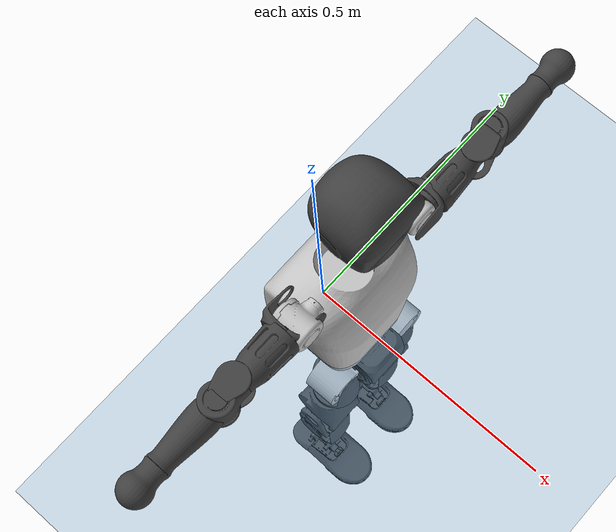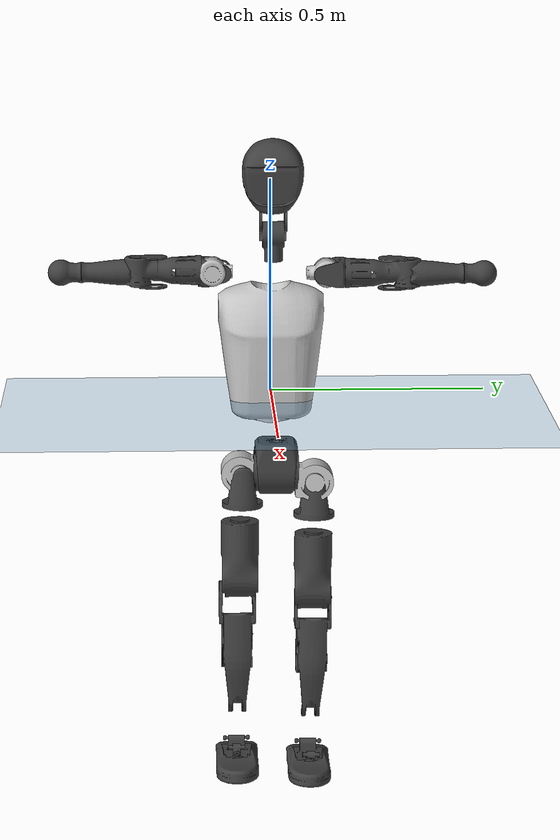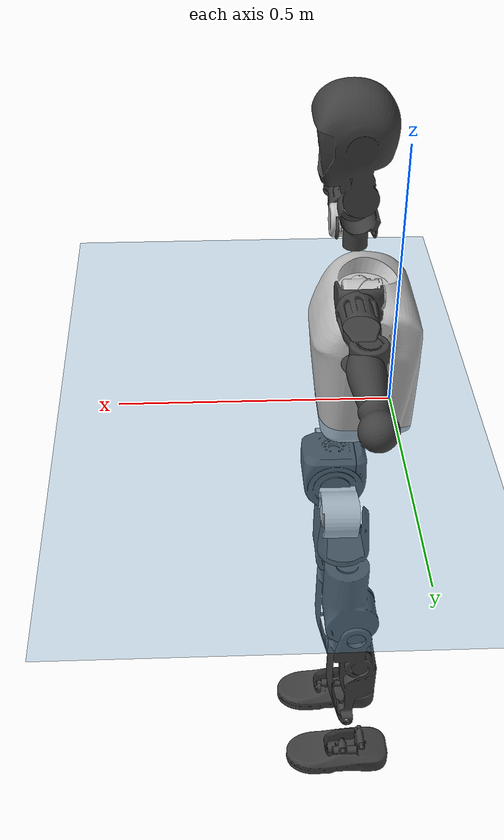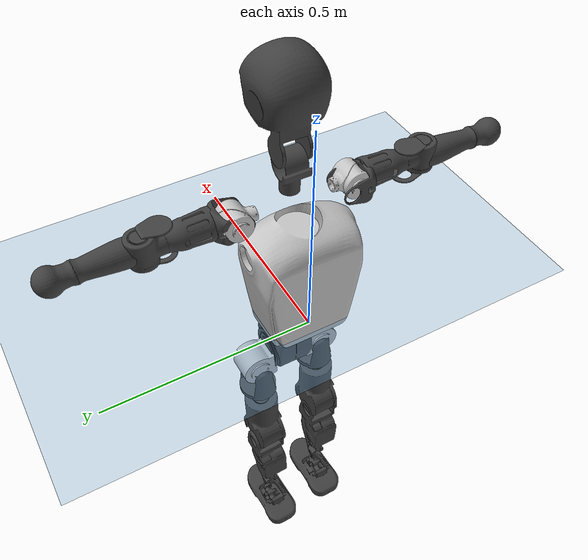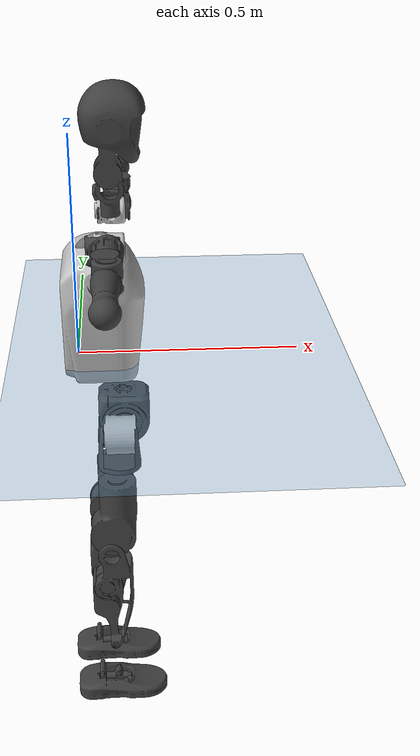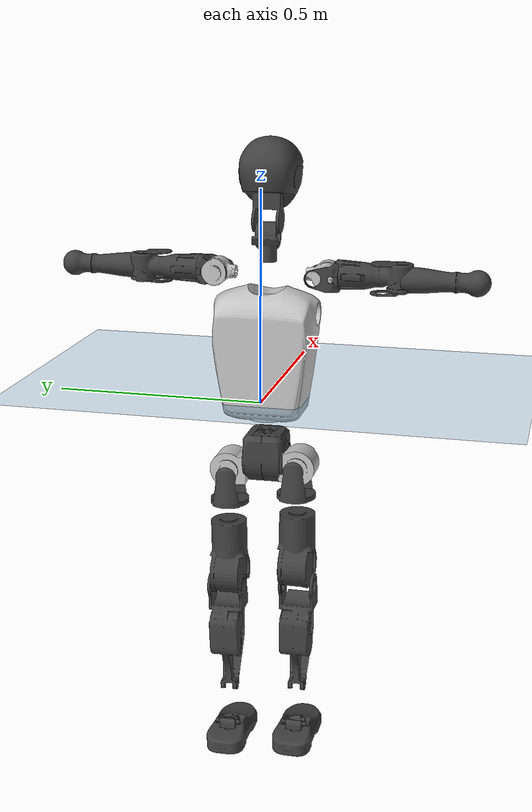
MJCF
<mujoco model="T1">
  <compiler angle="radian" assetdir="assets" balanceinertia="true" inertiafromgeom="false"/>

  <option timestep="0.005" density="1.2" viscosity="2e-05"/>

  <size nkey="1"/>

  <visual>
    <quality shadowsize="8192"/>
    <map shadowclip="0.5"/>
  </visual>

  <default>
    <default class="/">
      <joint armature="0.01" damping="0.01" frictionloss="0.1"/>
      <geom contype="0" conaffinity="0" group="1" solref="-1000 -80"/>
      <site size="0.01 0.005 0.005" group="5"/>
      <general forcelimited="true" biastype="affine" gainprm="25" biasprm="0 -25 -0.6"/>
      <default class="t1">
        <geom rgba="0.25 0.25 0.25 1"/>
        <default class="visual">
          <geom type="mesh" group="2"/>
        </default>
        <default class="collision">
          <geom group="3"/>
        </default>
        <default class="foot">
          <geom size="0.1115 0.05 0.015" type="box" condim="6" group="4" priority="1" solimp="0.015 1 0.015"/>
        </default>
        <default class="reward_collision_sphere">
          <geom group="5" rgba="1 0 0 1"/>
        </default>
      </default>
    </default>
  </default>

  <asset>
    <texture type="skybox" colorspace="auto" name="//unnamed_texture_0" builtin="gradient" rgb1="0.95 0.95 0.95" rgb2="0.95 0.95 0.95" width="100" height="600"/>
    <texture type="2d" colorspace="auto" name="texplane" builtin="checker" rgb1="0.345 0.575 0.748" rgb2="0.345 0.575 0.748" markrgb="1 1 1" width="512" height="512"/>
    <material name="MatPlane" class="/" texture="texplane" texuniform="true" texrepeat="2 2" specular="0.9"/>
    <mesh name="Trunk" class="/" file="Trunk.stl"/>
    <mesh name="H1" class="/" file="H1.stl"/>
    <mesh name="H2" class="/" file="H2.stl"/>
    <mesh name="AL1" class="/" file="AL1.stl"/>
    <mesh name="AL2" class="/" file="AL2.stl"/>
    <mesh name="AL3" class="/" file="AL3.stl"/>
    <mesh name="left_hand_link" class="/" file="left_hand_link.stl"/>
    <mesh name="AR1" class="/" file="AR1.stl"/>
    <mesh name="AR2" class="/" file="AR2.stl"/>
    <mesh name="AR3" class="/" file="AR3.stl"/>
    <mesh name="right_hand_link" class="/" file="right_hand_link.stl"/>
    <mesh name="Waist" class="/" file="Waist.stl"/>
    <mesh name="Hip_Pitch_Left" class="/" file="Hip_Pitch_Left.stl"/>
    <mesh name="Hip_Roll_Left" class="/" file="Hip_Roll_Left.stl"/>
    <mesh name="Hip_Yaw_Left" class="/" file="Hip_Yaw_Left.stl"/>
    <mesh name="Shank_Left" class="/" file="Shank_Left.stl"/>
    <mesh name="Ankle_Cross_Left" class="/" file="Ankle_Cross_Left.stl"/>
    <mesh name="left_foot_link" class="/" file="left_foot_link.stl"/>
    <mesh name="Hip_Pitch_Right" class="/" file="Hip_Pitch_Right.stl"/>
    <mesh name="Hip_Roll_Right" class="/" file="Hip_Roll_Right.stl"/>
    <mesh name="Hip_Yaw_Right" class="/" file="Hip_Yaw_Right.stl"/>
    <mesh name="Shank_Right" class="/" file="Shank_Right.stl"/>
    <mesh name="Ankle_Cross_Right" class="/" file="Ankle_Cross_Right.stl"/>
    <mesh name="right_foot_link" class="/" file="right_foot_link.stl"/>
  </asset>

  <worldbody>
    <geom name="floor" class="/" size="100 100 0.125" type="plane" group="0" material="MatPlane"/>
    <light name="toplight_shadow" class="/" pos="0 0 5" dir="0.0990148 0.0990148 -0.990148" type="directional" ambient="0.04 0.04 0.04" diffuse="0.55 0.55 0.55" specular="0.12 0.12 0.12"/>
    <light name="toplight_fill" class="/" pos="0 0 5" dir="0.0990148 0.0990148 -0.990148" type="directional" castshadow="false" ambient="0.04 0.04 0.04" diffuse="0.3 0.3 0.3" specular="0.08 0.08 0.08"/>
    <body name="trunk" childclass="t1" pos="-0.000183316 -0.00156439 -0.00881701" quat="1 0.000346274 -0.000233265 0.000473624">
      <inertial pos="0.0737466 0.00693369 0.141837" quat="0.999158 -0.0101398 -0.0324395 -0.0229861" mass="18.5848" diaginertia="0.416137 0.0205479 0.266705"/>
      <joint name="//unnamed_joint_0" type="free" armature="0" damping="0" frictionloss="0"/>
      <geom name="//unnamed_geom_1" class="visual" rgba="0.76 0.76 0.76 1" mesh="Trunk"/>
      <geom name="//unnamed_geom_2" class="collision" size="0.0864948 0.115326 0.17299" pos="0.0817601 0 0.161669" type="box"/>
      <geom name="//unnamed_geom_3" class="reward_collision_sphere" size="0.132625" pos="0.0817601 0 0.134724"/>
      <geom name="//unnamed_geom_4" class="reward_collision_sphere" size="0.017299" pos="0.0817601 0.0637396 0"/>
      <geom name="//unnamed_geom_5" class="reward_collision_sphere" size="0.017299" pos="0.0817601 -0.0637396 0"/>
      <geom name="//unnamed_geom_6" class="reward_collision_sphere" size="0.017299" pos="0.0817601 0.080237 0.242504"/>
      <geom name="//unnamed_geom_7" class="reward_collision_sphere" size="0.017299" pos="0.0817601 -0.080237 0.242504"/>
      <site name="imu" pos="-0.00195081 -0.0521954 0.022688" size="0.0115326"/>
      <camera name="track" pos="0 -1.49976 0" quat="0.707107 0.707107 0 0" mode="trackcom"/>
      <camera name="ego_camera" pos="0.166246 0 0.565843" quat="-0.5 -0.5 0.5 0.5"/>
      <body name="H1" pos="0.0832661 0.00603713 0.330617" quat="0.999987 0.0014903 0.00446609 -0.00187734">
        <inertial pos="-0.003486 -0.000875927 0.0726903" quat="0.757147 -0.0187699 -0.0113138 0.652877" mass="0.801818" diaginertia="0.00126481 5.12093e-05 0.000715715"/>
        <joint name="AAHead_yaw" pos="0 0 0" axis="0.00773144 -0.0163241 0.999837" range="-1.66181 1.3255" armature="0.0111073" damping="0.0486553" frictionloss="0.156913"/>
        <geom name="//unnamed_geom_8" class="visual" mesh="H1"/>
        <body name="H2" pos="-0.00288108 0.000241029 0.0970315" quat="0.999978 0.00293857 -0.00308393 -0.00513339">
          <inertial pos="0.0152521 -0.00694101 0.124133" quat="0.987788 0.0987371 -0.104535 -0.0599879" mass="0.953437" diaginertia="0.0093393 0.000428329 0.00792259"/>
          <joint name="Head_pitch" pos="0 0 0" axis="-0.0429194 -0.999072 -0.00351403" stiffness="0.0353081" range="-1.26343 0.379663" armature="0.0122412" damping="0" frictionloss="0.121959"/>
          <geom name="//unnamed_geom_9" class="visual" mesh="H2"/>
          <geom name="//unnamed_geom_10" class="collision" size="0.0922611" pos="0.0136267 0 0.148197"/>
          <geom name="//unnamed_geom_11" class="reward_collision_sphere" size="0.103794" pos="0.0272534 0 0.134724"/>
        </body>
      </body>
      <body name="AL1" pos="0.0841421 0.0825135 0.302645" quat="1 -0.000178013 0.000141675 -0.000334938">
        <inertial pos="-0.00431639 0.0402246 -0.00121361" quat="0.470129 0.517216 -0.483342 0.527112" mass="0.90296" diaginertia="0.00758443 0.000336747 0.00142419"/>
        <joint name="Left_Shoulder_Pitch" pos="0 0 0" axis="-0.00818232 0.999513 -0.0301133" stiffness="0.0306029" range="-3.54185 1.25027" armature="0.016467" damping="0.0399379" frictionloss="0.145143"/>
        <geom name="//unnamed_geom_12" class="visual" rgba="0.76 0.76 0.76 1" mesh="AL1"/>
        <body name="AL2" pos="0.00558352 0.0361424 0.000827634" quat="0.999985 0.00224799 0.00111204 0.00491645">
          <inertial pos="-0.0073848 0.0222876 -0.000786536" quat="0.475691 0.525855 -0.468649 0.526842" mass="0.275032" diaginertia="0.00210374 9.28012e-05 0.000874745"/>
          <joint name="Left_Shoulder_Roll" pos="0 0 0" axis="-0.999933 0.00661086 0.00949417" stiffness="0.0063754" range="-1.58314 1.77651" armature="0.00728549" damping="0" frictionloss="0.118497"/>
          <geom name="//unnamed_geom_13" class="visual" mesh="AL2"/>
          <body name="AL3" pos="0.00797306 0.0500588 0.000375726" quat="0.999986 -0.00482329 0.00050413 0.00205471">
            <inertial pos="-0.0116264 0.0624075 -0.00579009" quat="0.733263 0.677975 -0.051333 0.00626076" mass="1.30456" diaginertia="0.0525438 0.0021139 0.00232417"/>
            <joint name="Left_Elbow_Pitch" pos="0 0 0" axis="-0.00758391 -0.999909 -0.011173" range="-2.28446 2.0193" armature="0.00628453" damping="0.0101994" frictionloss="0.0431456"/>
            <geom name="//unnamed_geom_14" class="visual" mesh="AL3"/>
            <geom name="//unnamed_geom_15" class="collision" size="0.0345979 0.0864948" pos="0 0.0374939 0" quat="0.707105 0.707108 0 0" type="cylinder"/>
            <geom name="//unnamed_geom_16" class="reward_collision_sphere" size="0.0415175"/>
            <body name="left_hand_link" pos="0.00731987 0.105702 -0.000249376" quat="0.999981 -0.00236273 0.00437332 -0.00358082">
              <inertial pos="0.00170036 0.0738925 0.00109325" quat="0.704365 0.709761 0.0101378 -0.00258321" mass="0.547599" diaginertia="0.0331996 0.00173908 0.00109466"/>
              <joint name="Left_Elbow_Yaw" pos="0 0 0" axis="-0.0459378 0.0192234 0.998759" range="-2.32464 -0.24863" armature="0.0166087" damping="0.0580616" frictionloss="0.081122"/>
              <geom name="//unnamed_geom_17" class="visual" mesh="left_hand_link"/>
              <geom name="//unnamed_geom_18" class="collision" size="0.0345979 0.100911" pos="0 0.0974842 0" quat="0.707105 0.707108 0 0" type="cylinder"/>
              <geom name="//unnamed_geom_19" class="reward_collision_sphere" size="0.0576632"/>
              <geom name="//unnamed_geom_20" class="reward_collision_sphere" size="0.0403642" pos="0 0.0824866 0"/>
              <geom name="//unnamed_geom_21" class="reward_collision_sphere" size="0.0403642" pos="0 0.161224 0"/>
            </body>
          </body>
        </body>
      </body>
      <body name="AR1" pos="0.0795268 -0.0886039 0.306274" quat="1 4.53399e-05 0.000516017 0.000102985">
        <inertial pos="0.000505243 -0.023601 0.00142947" quat="0.513632 0.487868 -0.497539 0.500622" mass="0.745249" diaginertia="0.00630389 0.00032708 0.00127637"/>
        <joint name="Right_Shoulder_Pitch" pos="0 0 0" axis="0.00853442 -0.997931 0.0637305" stiffness="0.0266002" range="-1.2306 3.07984" armature="0.0124337" damping="0" frictionloss="0.183981"/>
        <geom name="//unnamed_geom_22" class="visual" rgba="0.76 0.76 0.76 1" mesh="AR1"/>
        <body name="AR2" pos="-0.0131704 -0.0238235 -0.00263242" quat="1 0.000122929 -9.23452e-05 -0.000126389">
          <inertial pos="-0.0033713 -0.0274795 0.000572155" quat="0.524209 0.482463 -0.500495 0.491873" mass="0.17986" diaginertia="0.00158504 7.53485e-05 0.000667204"/>
          <joint name="Right_Shoulder_Roll" pos="0 0 0" axis="-0.998801 0.0344529 0.0347836" stiffness="0.0463764" range="-1.70011 1.39965" armature="0.0122697" damping="0.0560326" frictionloss="0.0604033"/>
          <geom name="//unnamed_geom_23" class="visual" mesh="AR2"/>
          <body name="AR3" pos="0.010075 -0.0472783 0.00531038" quat="0.999995 0.000257527 -0.000387043 -0.00303968">
            <inertial pos="-0.00164953 -0.0730788 0.00219104" quat="0.722987 0.690751 -0.000419822 0.0123836" mass="1.14828" diaginertia="0.0501194 0.00247162 0.00223892"/>
            <joint name="Right_Elbow_Pitch" pos="0 0 0" axis="-4.65457e-05 1 -0.00035085" stiffness="0.0680962" range="-2.08906 2.47" armature="0.0114776" damping="0.0127276" frictionloss="0.107511"/>
            <geom name="//unnamed_geom_24" class="visual" mesh="AR3"/>
            <geom name="//unnamed_geom_25" class="collision" size="0.0345979 0.0864948" pos="0 -0.0374939 0" quat="0.707105 0.707108 0 0" type="cylinder"/>
            <geom name="//unnamed_geom_26" class="reward_collision_sphere" size="0.0415175"/>
            <body name="right_hand_link" pos="-0.00332421 -0.107927 -0.00417884" quat="1 8.52606e-05 0.000118266 -6.29512e-05">
              <inertial pos="0.00037872 -0.081114 0.0128452" quat="0.717194 0.696076 0.00223342 0.0332555" mass="0.633872" diaginertia="0.0415046 0.00213062 0.00105808"/>
              <joint name="Right_Elbow_Yaw" pos="0 0 0" axis="0.0393417 -0.00821259 0.999192" stiffness="0.00344926" range="-0.0858266 2.23485" armature="0.0123927" damping="0.0151758" frictionloss="0.115387"/>
              <geom name="//unnamed_geom_27" class="visual" mesh="right_hand_link"/>
              <geom name="//unnamed_geom_28" class="collision" size="0.0345979 0.100911" pos="0 -0.0974842 0" quat="0.707105 0.707108 0 0" type="cylinder"/>
              <geom name="//unnamed_geom_29" class="reward_collision_sphere" size="0.0576632"/>
              <geom name="//unnamed_geom_30" class="reward_collision_sphere" size="0.0403642" pos="0 -0.0824866 0"/>
              <geom name="//unnamed_geom_31" class="reward_collision_sphere" size="0.0403642" pos="0 -0.161224 0"/>
            </body>
          </body>
        </body>
      </body>
      <body name="Waist" pos="0.0990173 0.010011 -0.157675" quat="0.99999 -0.00444184 0.000215319 0.000742828">
        <inertial pos="0.00346863 0.00900228 0.00892758" quat="0.983517 -0.0016045 -0.180773 0.00366108" mass="4.11492" diaginertia="0.0296294 0.00145954 0.0258257"/>
        <joint name="Waist" pos="0 0 0" axis="0.0343734 0.00967165 0.999362" range="-1.59621 1.55588" armature="0.00947325" damping="0.0268752" frictionloss="0.18276"/>
        <geom name="//unnamed_geom_32" class="visual" mesh="Waist"/>
        <body name="Hip_Pitch_Left" pos="-0.00438121 0.0908689 -0.00916988" quat="0.999989 -0.0037163 -0.00256663 -0.00156738">
          <inertial pos="0.00222268 -0.00311378 -0.0259274" quat="0.976009 0.213544 0.0418064 0.00758149" mass="1.56748" diaginertia="0.00928649 0.00031211 0.00634657"/>
          <joint name="Left_Hip_Pitch" pos="0 0 0" axis="-0.0070787 0.999954 0.00650673" stiffness="0.0561112" range="-1.78664 1.50477" armature="0.0130878" damping="0.00653858" frictionloss="0.0903831"/>
          <geom name="//unnamed_geom_33" class="visual" rgba="0.76 0.76 0.76 1" mesh="Hip_Pitch_Left"/>
          <body name="Hip_Roll_Left" pos="-0.0106436 0.000494427 -0.033495" quat="0.999978 0.00213772 -0.00301092 0.00554808">
            <inertial pos="0.01284 0.00950669 -0.0752235" quat="0.67429 0.0350531 0.0149362 0.737483" mass="0.58248" diaginertia="0.00902041 0.000347888 0.00233561"/>
            <joint name="Left_Hip_Roll" pos="0 0 0" axis="-0.997819 0.0334954 0.0568756" range="-1.3978 -0.0222649" armature="0.00578584" damping="0" frictionloss="0.114587"/>
            <geom name="//unnamed_geom_34" class="visual" mesh="Hip_Roll_Left"/>
            <geom name="//unnamed_geom_35" class="reward_collision_sphere" size="0.0634295"/>
            <body name="Hip_Yaw_Left" pos="-0.0137282 0.000120305 -0.120257" quat="0.999983 -0.00474074 0.00293532 -0.00168328">
              <inertial pos="-0.0111109 0.000131626 -0.114339" quat="0.698631 -0.0344123 -0.0259793 0.714182" mass="3.40073" diaginertia="0.136855 0.0061571 0.0105319"/>
              <joint name="Left_Hip_Yaw" pos="0 0 0" axis="0.0275883 0.00621946 -0.9996" range="-1.05312 1.24277" armature="0.0111208" damping="0.0115226" frictionloss="0.0836535"/>
              <geom name="//unnamed_geom_36" class="visual" mesh="Hip_Yaw_Left"/>
              <geom name="//unnamed_geom_37" class="collision" size="0.0576632 0.0922611" type="cylinder"/>
              <body name="Shank_Left" pos="-0.0238089 0.00360086 -0.168147" quat="1 -6.17524e-05 0.000157218 -0.000514184">
                <inertial pos="-0.017779 0.0105076 -0.167783" quat="0.997686 0.00503359 -0.030387 0.0606054" mass="2.75334" diaginertia="0.16522 0.0087196 0.00784"/>
                <joint name="Left_Knee_Pitch" pos="0 0 0" axis="0.0321519 0.999441 -0.00915975" range="-0.128647 2.24272" armature="0.0124879" damping="0.00244701" frictionloss="0.113374"/>
                <geom name="//unnamed_geom_38" class="visual" mesh="Shank_Left"/>
                <geom name="//unnamed_geom_39" class="collision" size="0.0576632 0.0864948" pos="0 0 -0.161669" type="cylinder"/>
                <geom name="//unnamed_geom_40" class="reward_collision_sphere" size="0.0749621"/>
                <body name="Ankle_Cross_Left" pos="0.00148744 0.00405222 -0.389012" quat="0.999995 0.00210899 0.000788967 0.00213846">
                  <inertial pos="-0.013418 -0.00355995 -0.00470604" quat="0.44383 0.554161 0.551679 0.437688" mass="0.10126" diaginertia="0.000133106 6.7535e-06 5.29934e-05"/>
                  <joint name="Left_Ankle_Pitch" pos="0 0 0" axis="0.01833 0.99965 -0.0190515" range="-0.805094 0.278546" armature="0.0114845" damping="0" frictionloss="0.162739"/>
                  <geom name="//unnamed_geom_41" class="visual" mesh="Ankle_Cross_Left"/>
                  <body name="left_foot_link" pos="0.00213624 -0.00603346 -0.010238" quat="0.999999 -0.00107464 -0.000248412 0.00033904">
                    <inertial pos="-0.00426414 -0.00937257 -0.0134455" quat="-0.0148479 0.646461 -0.0012275 0.762801" mass="1.15451" diaginertia="0.0101506 0.000501681 0.00871175"/>
                    <joint name="Left_Ankle_Roll" pos="0 0 0" axis="-0.999399 0.033322 -0.00957869" range="-0.368395 0.20621" armature="0.00477109" damping="0.00831959" frictionloss="0.09291"/>
                    <geom name="//unnamed_geom_42" class="visual" mesh="left_foot_link"/>
                    <geom name="left_foot" class="foot" size="0.106198 0.067916 0.0190684" pos="0.0136267 0 -0.0202087"/>
                    <geom name="//unnamed_geom_44" class="reward_collision_sphere" size="0.0599697" pos="0.0136267 0 -0.0202087"/>
                    <geom name="//unnamed_geom_45" class="reward_collision_sphere" size="0.0345979" pos="0.129453 -0.0172472 -0.0202087"/>
                    <geom name="//unnamed_geom_46" class="reward_collision_sphere" size="0.0345979" pos="-0.0953868 -0.0172472 -0.0202087"/>
                    <site name="left_foot" class="foot" pos="0.0136267 0 -0.0202087" size="0.0115326"/>
                  </body>
                </body>
              </body>
            </body>
          </body>
        </body>
        <body name="Hip_Pitch_Right" pos="-0.00996895 -0.0837857 0.00877617" quat="1 -0.000142177 0.000335892 4.57216e-05">
          <inertial pos="0.0113073 0.00382896 -0.0236099" quat="0.971603 -0.236041 -0.0116431 0.0117136" mass="1.76921" diaginertia="0.00889627 0.000364493 0.00595302"/>
          <joint name="Right_Hip_Pitch" pos="0 0 0" axis="0.00223854 -0.999885 0.0150113" stiffness="0.0270424" range="-1.61017 1.92958" armature="0.00402956" damping="0.00494969" frictionloss="0.147808"/>
          <geom name="//unnamed_geom_47" class="visual" rgba="0.76 0.76 0.76 1" mesh="Hip_Pitch_Right"/>
          <body name="Hip_Roll_Right" pos="-0.0024221 0.00623922 -0.0262767" quat="1 -8.24918e-05 4.95086e-05 -4.823e-05">
            <inertial pos="0.00223424 0.0117536 -0.0637821" quat="0.687931 -0.0383478 0.029243 0.724172" mass="0.678409" diaginertia="0.00949627 0.000425864 0.00268323"/>
            <joint name="Right_Hip_Roll" pos="0 0 0" axis="-0.999997 0.00160028 0.00209466" stiffness="0.0142236" range="-0.199637 1.54504" armature="0.0107687" damping="0.00166617" frictionloss="0.167082"/>
            <geom name="//unnamed_geom_48" class="visual" mesh="Hip_Roll_Right"/>
            <geom name="//unnamed_geom_49" class="reward_collision_sphere" size="0.0634295"/>
            <body name="Hip_Yaw_Right" pos="-0.00972066 -0.00517647 -0.11492" quat="0.999991 0.00311041 -0.00269797 -0.000898634">
              <inertial pos="-0.00988676 0.0131093 -0.125406" quat="0.721543 -0.0446713 -0.0219951 0.690577" mass="3.57286" diaginertia="0.138929 0.00689742 0.0139273"/>
              <joint name="Right_Hip_Yaw" pos="0 0 0" axis="0.00817829 -0.0321124 -0.999451" range="-0.878035 0.807549" armature="0.0125571" damping="0" frictionloss="0.112746"/>
              <geom name="//unnamed_geom_50" class="visual" mesh="Hip_Yaw_Right"/>
              <geom name="//unnamed_geom_51" class="collision" size="0.0576632 0.0922611" type="cylinder"/>
              <body name="Shank_Right" pos="-0.0201119 -0.00633128 -0.183726" quat="1 0.000278456 -0.000109335 -0.000107789">
                <inertial pos="-0.00922917 -0.00159714 -0.160277" quat="0.99904 0.003941 -0.0314694 -0.030234" mass="3.0184" diaginertia="0.216535 0.0097356 0.00973123"/>
                <joint name="Right_Knee_Pitch" pos="0 0 0" axis="-0.021278 -0.999771 0.00232492" stiffness="0.0503959" range="-2.45729 -0.0960205" armature="0.0118901" damping="0" frictionloss="0.121835"/>
                <geom name="//unnamed_geom_52" class="visual" mesh="Shank_Right"/>
                <geom name="//unnamed_geom_53" class="collision" size="0.0576632 0.0864948" pos="0 0 -0.161669" type="cylinder"/>
                <geom name="//unnamed_geom_54" class="reward_collision_sphere" size="0.0749621"/>
                <body name="Ankle_Cross_Right" pos="0.00399343 -0.00179415 -0.381048" quat="0.999988 0.00387775 -0.00181189 -0.00216564">
                  <inertial pos="-0.00271626 0.0014076 0.000841948" quat="0.475768 0.51744 0.530155 0.474168" mass="0.124787" diaginertia="0.000179602 6.10739e-06 6.56609e-05"/>
                  <joint name="Right_Ankle_Pitch" pos="0 0 0" axis="-0.0476657 -0.998859 -0.00279041" stiffness="0.0478553" range="-0.51219 0.786339" armature="0.0123173" damping="0.0491309" frictionloss="0.169161"/>
                  <geom name="//unnamed_geom_55" class="visual" mesh="Ankle_Cross_Right"/>
                  <body name="right_foot_link" pos="0.00034219 0.000398942 -0.021232" quat="0.999998 0.000886099 0.000846544 0.00182672">
                    <inertial pos="0.0129886 0.00812804 -0.0109515" quat="-0.027551 0.597681 0.0086405 0.801214" mass="1.03694" diaginertia="0.0131283 0.000580211 0.0110212"/>
                    <joint name="Right_Ankle_Roll" pos="0 0 0" axis="-0.999987 0.00378411 -0.00331751" range="-0.402373 0.446129" armature="0.00818653" damping="0" frictionloss="0.121346"/>
                    <geom name="//unnamed_geom_56" class="visual" mesh="right_foot_link"/>
                    <geom name="right_foot" class="foot" size="0.0934169 0.0448468 0.0159428" pos="0.0136267 0 -0.0202087"/>
                    <geom name="//unnamed_geom_58" class="reward_collision_sphere" size="0.0461305"/>
                    <geom name="//unnamed_geom_59" class="reward_collision_sphere" size="0.0345979" pos="0.0136267 0 -0.0202087"/>
                    <geom name="//unnamed_geom_60" class="reward_collision_sphere" size="0.0345979" pos="0.129453 0.0172472 -0.0202087"/>
                    <geom name="//unnamed_geom_61" class="reward_collision_sphere" size="0.0345979" pos="-0.0953868 0.0172472 -0.0202087"/>
                    <site name="right_foot" class="foot" pos="0.0136267 0 -0.0202087" size="0.0115326"/>
                  </body>
                </body>
              </body>
            </body>
          </body>
        </body>
      </body>
    </body>
  </worldbody>

  <contact>
    <pair class="/" geom1="floor" geom2="left_foot" name="//unnamed_contact_0"/>
    <pair class="/" geom1="floor" geom2="right_foot" name="//unnamed_contact_1"/>
  </contact>

  <actuator>
    <general name="AAHead_yaw" class="/" joint="AAHead_yaw" forcerange="-5.68679 5.68679" gainprm="28.3607" biasprm="0 -28.3607 -0.81194"/>
    <general name="Head_pitch" class="/" joint="Head_pitch" forcerange="-5.5331 5.5331" gainprm="28.3607" biasprm="0 -28.3607 -0.81194"/>
    <general name="Left_Shoulder_Pitch" class="/" joint="Left_Shoulder_Pitch" forcerange="-24.1689 24.1689" gainprm="28.3607" biasprm="0 -28.3607 -0.81194"/>
    <general name="Left_Shoulder_Roll" class="/" joint="Left_Shoulder_Roll" forcerange="-19.8367 19.8367" gainprm="28.3607" biasprm="0 -28.3607 -0.81194"/>
    <general name="Left_Elbow_Pitch" class="/" joint="Left_Elbow_Pitch" forcerange="-12.0236 12.0236" gainprm="28.3607" biasprm="0 -28.3607 -0.81194"/>
    <general name="Left_Elbow_Yaw" class="/" joint="Left_Elbow_Yaw" forcerange="-26.6642 26.6642" gainprm="28.3607" biasprm="0 -28.3607 -0.81194"/>
    <general name="Right_Shoulder_Pitch" class="/" joint="Right_Shoulder_Pitch" forcerange="-30.3246 30.3246" gainprm="28.3607" biasprm="0 -28.3607 -0.81194"/>
    <general name="Right_Shoulder_Roll" class="/" joint="Right_Shoulder_Roll" forcerange="-19.6947 19.6947" gainprm="28.3607" biasprm="0 -28.3607 -0.81194"/>
    <general name="Right_Elbow_Pitch" class="/" joint="Right_Elbow_Pitch" forcerange="-11.7686 11.7686" gainprm="28.3607" biasprm="0 -28.3607 -0.81194"/>
    <general name="Right_Elbow_Yaw" class="/" joint="Right_Elbow_Yaw" forcerange="-17.1905 17.1905" gainprm="28.3607" biasprm="0 -28.3607 -0.81194"/>
    <general name="Waist" class="/" joint="Waist" forcerange="-37.603 37.603" gainprm="28.3607" biasprm="0 -28.3607 -0.81194"/>
    <general name="Left_Hip_Pitch" class="/" joint="Left_Hip_Pitch" forcerange="-59.5461 59.5461" gainprm="28.3607" biasprm="0 -28.3607 -0.81194"/>
    <general name="Left_Hip_Roll" class="/" joint="Left_Hip_Roll" forcerange="-20.6133 20.6133" gainprm="28.3607" biasprm="0 -28.3607 -0.81194"/>
    <general name="Left_Hip_Yaw" class="/" joint="Left_Hip_Yaw" forcerange="-51.3701 51.3701" gainprm="28.3607" biasprm="0 -28.3607 -0.81194"/>
    <general name="Left_Knee_Pitch" class="/" joint="Left_Knee_Pitch" forcerange="-45.829 45.829" gainprm="28.3607" biasprm="0 -28.3607 -0.81194"/>
    <general name="Left_Ankle_Pitch" class="/" joint="Left_Ankle_Pitch" forcerange="-35.138 35.138" gainprm="28.3607" biasprm="0 -28.3607 -0.81194"/>
    <general name="Left_Ankle_Roll" class="/" joint="Left_Ankle_Roll" forcerange="-17.0063 17.0063" gainprm="28.3607" biasprm="0 -28.3607 -0.81194"/>
    <general name="Right_Hip_Pitch" class="/" joint="Right_Hip_Pitch" forcerange="-53.4606 53.4606" gainprm="28.3607" biasprm="0 -28.3607 -0.81194"/>
    <general name="Right_Hip_Roll" class="/" joint="Right_Hip_Roll" forcerange="-42.9646 42.9646" gainprm="28.3607" biasprm="0 -28.3607 -0.81194"/>
    <general name="Right_Hip_Yaw" class="/" joint="Right_Hip_Yaw" forcerange="-42.9196 42.9196" gainprm="28.3607" biasprm="0 -28.3607 -0.81194"/>
    <general name="Right_Knee_Pitch" class="/" joint="Right_Knee_Pitch" forcerange="-43.2505 43.2505" gainprm="28.3607" biasprm="0 -28.3607 -0.81194"/>
    <general name="Right_Ankle_Pitch" class="/" joint="Right_Ankle_Pitch" forcerange="-17.1375 17.1375" gainprm="28.3607" biasprm="0 -28.3607 -0.81194"/>
    <general name="Right_Ankle_Roll" class="/" joint="Right_Ankle_Roll" forcerange="-24.8417 24.8417" gainprm="28.3607" biasprm="0 -28.3607 -0.81194"/>
  </actuator>

  <sensor>
    <gyro site="imu" name="imu_angular_velocity"/>
    <velocimeter site="imu" name="imu_linear_velocity"/>
    <framelinvel objtype="site" objname="left_foot" name="left_foot_global_linear_velocity"/>
    <framelinvel objtype="site" objname="right_foot" name="right_foot_global_linear_velocity"/>
  </sensor>

  <keyframe>
    <key name="home" qpos="0 0 0.6385 1 0 0 0 0 0 0 1.4 0 -0.4 0 -1.4 0 0.4 0 -0.4 0 0 0.8 -0.4 0 0.4 0 0 -0.8 0.4 0"/>
  </keyframe>
</mujoco>
